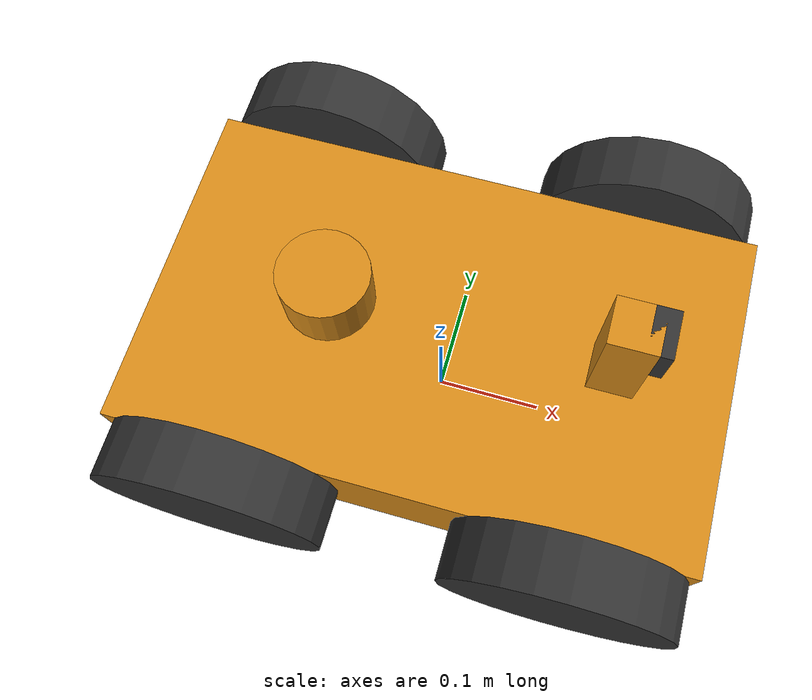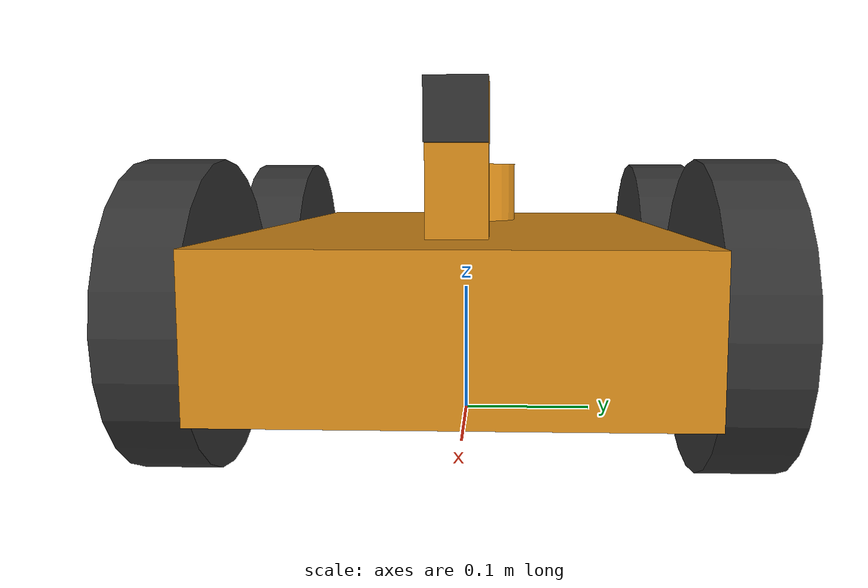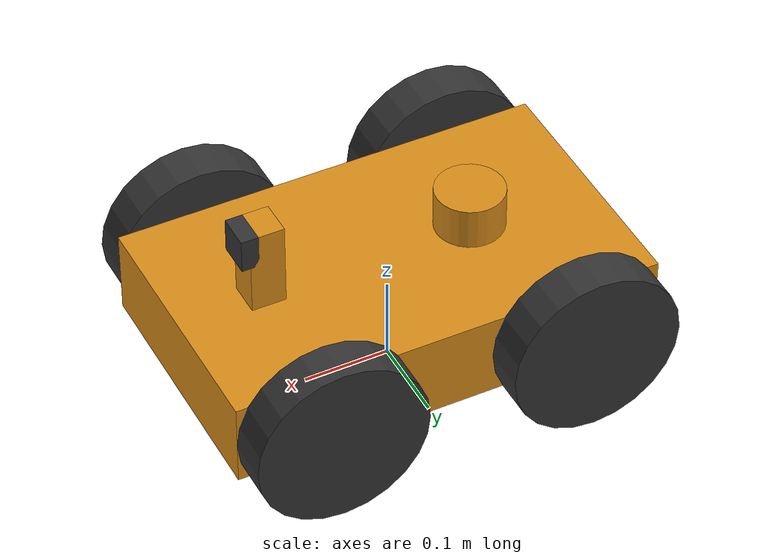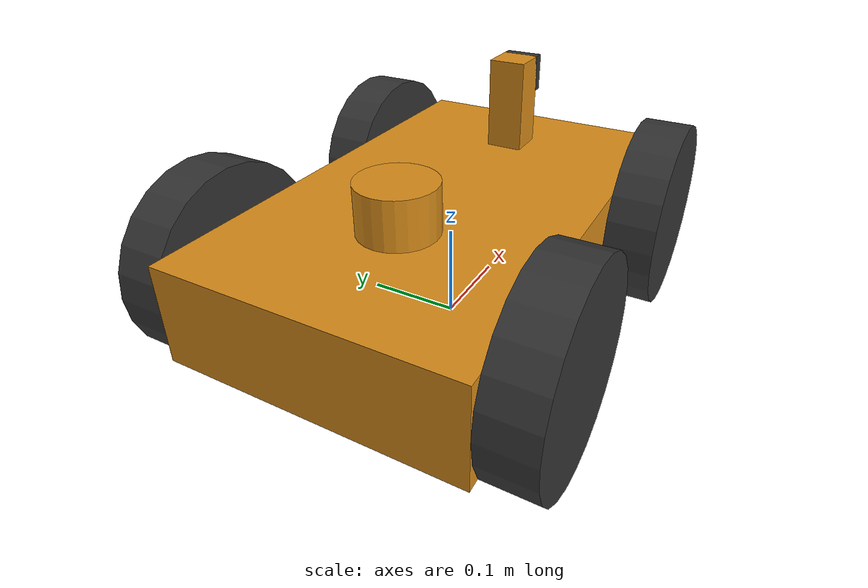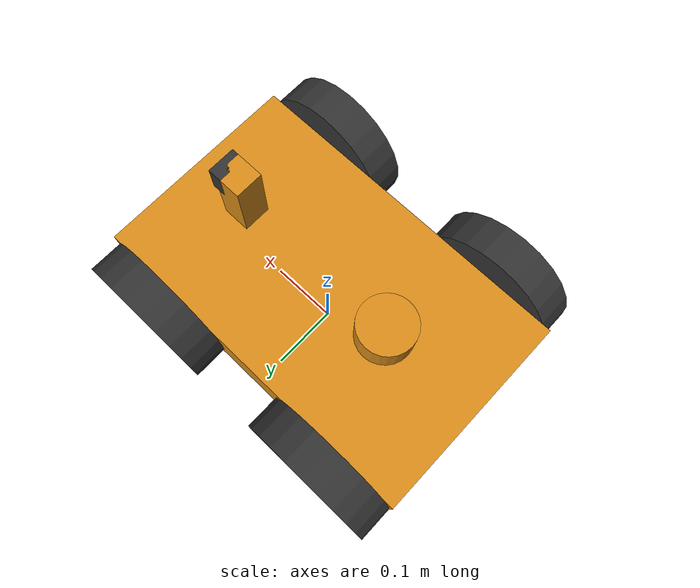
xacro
<?xml version="1.0"?>
<robot xmlns:xacro="http://www.ros.org/wiki/xacro" name="rover_robot">

    <material name="rover_body">
        <color rgba="0.85 0.55 0.1 1"/>
    </material>
    <material name="rover_wheels">
        <color rgba="0.2 0.2 0.2 1"/>
    </material>

    <xacro:property name="wheel_radius" value="0.1"/>
    <xacro:property name="wheel_length" value="0.05"/>
    <xacro:property name="wheel_mass" value="1.0"/>

    <link name="base_link"></link>

    <joint name="chassis_joint" type="fixed">
        <parent link="base_link"/>
        <child link="chassis"/>
        <origin xyz="0 0 0.1"/> </joint>

    <link name="chassis">
        <visual>
            <geometry>
                <box size="0.5 0.3 0.1"/>
            </geometry>
            <material name="rover_body"/>
        </visual>
        <collision>
            <geometry>
                <box size="0.5 0.3 0.1"/>
            </geometry>
        </collision>
        <inertial>
            <mass value="10.0"/>
            <origin xyz="0 0 0"/>
            <inertia ixx="0.083" ixy="0.0" ixz="0.0" iyy="0.216" iyz="0.0" izz="0.283"/>
        </inertial>
    </link>

    <joint name="camera_arm_joint" type="revolute">
        <parent link="chassis"/>
        <child link="camera_arm"/>
        <origin xyz="0.15 0 0.05" rpy="0 0 0"/>
        <axis xyz="0 1 0"/>
        <limit lower="-0.785" upper="0.785" effort="10.0" velocity="1.0"/>
        <dynamics damping="1.0" friction="0.5"/>
    </joint>

    <link name="camera_arm">
        <visual>
            <origin xyz="0 0 0.05" rpy="0 0 0"/>
            <geometry>
                <box size="0.04 0.04 0.1"/>
            </geometry>
            <material name="rover_body"/>
        </visual>
        <collision>
            <origin xyz="0 0 0.05" rpy="0 0 0"/>
            <geometry>
                <box size="0.04 0.04 0.1"/>
            </geometry>
        </collision>
        <inertial>
            <origin xyz="0 0 0.05" rpy="0 0 0"/>
            <mass value="0.1"/>
            <inertia ixx="0.0001" ixy="0.0" ixz="0.0" iyy="0.0001" iyz="0.0" izz="0.0001"/>
        </inertial>
    </link>

    <joint name="camera_joint" type="fixed">
        <parent link="camera_arm"/>
        <child link="camera_link"/>
        <origin xyz="0.02 0 0.08" rpy="0 0 0"/>
    </joint>

    <link name="camera_link">
        <visual>
            <geometry><box size="0.02 0.04 0.04"/></geometry>
            <material name="rover_wheels"/> </visual>
    </link>

    <joint name="camera_optical_joint" type="fixed">
        <parent link="camera_link"/>
        <child link="camera_link_optical"/>
        <origin xyz="0 0 0" rpy="-1.5708 0 -1.5708"/>
    </joint>
    <link name="camera_link_optical"></link>

    <joint name="lidar_joint" type="fixed">
        <parent link="chassis"/>
        <child link="lidar_link"/>
        <origin xyz="-0.1 0 0.075" rpy="0 0 0"/>
    </joint>

    <link name="lidar_link">
        <visual>
            <geometry><cylinder radius="0.04" length="0.05"/></geometry>
            <material name="rover_body"/>
        </visual>
    </link>

    <joint name="imu_joint" type="fixed">
        <parent link="chassis"/>
        <child link="imu_link"/>
        <origin xyz="0 0 0" rpy="0 0 0"/>
    </joint>
    <link name="imu_link"></link>

    <xacro:macro name="rover_wheel" params="prefix x_reflect y_reflect">
        <joint name="${prefix}_wheel_joint" type="continuous">
            <parent link="chassis"/>
            <child link="${prefix}_wheel"/>
            <origin xyz="${x_reflect * 0.15} ${y_reflect * 0.175} 0" rpy="${-1.5708 * y_reflect} 0 0"/>
            <axis xyz="0 0 ${y_reflect}"/>
        </joint>

        <link name="${prefix}_wheel">
            <visual>
                <geometry>
                    <cylinder radius="${wheel_radius}" length="${wheel_length}"/>
                </geometry>
                <material name="rover_wheels"/>
            </visual>
            <collision>
                <geometry>
                    <cylinder radius="${wheel_radius}" length="${wheel_length}"/>
                </geometry>
            </collision>
            <inertial>
                <mass value="${wheel_mass}"/>
                <inertia ixx="0.0027" ixy="0.0" ixz="0.0" iyy="0.0027" iyz="0.0" izz="0.005"/>
            </inertial>
        </link>
    </xacro:macro>

    <xacro:rover_wheel prefix="front_left" x_reflect="1" y_reflect="1"/>
    <xacro:rover_wheel prefix="front_right" x_reflect="1" y_reflect="-1"/>
    <xacro:rover_wheel prefix="rear_left" x_reflect="-1" y_reflect="1"/>
    <xacro:rover_wheel prefix="rear_right" x_reflect="-1" y_reflect="-1"/>

    <ros2_control name="RoverControl" type="system">
        <hardware>
            <plugin>ign_ros2_control/IgnitionSystem</plugin>
        </hardware>
        <joint name="camera_arm_joint">
            <command_interface name="position"/>
            <state_interface name="position"/>
            <state_interface name="velocity"/>
        </joint>
    </ros2_control>

    <gazebo>
    <plugin filename="libignition-gazebo-joint-state-publisher-system.so" name="ignition::gazebo::systems::JointStatePublisher">
        <topic>joint_states</topic>
        <joint_name>front_left_wheel_joint</joint_name>
        <joint_name>front_right_wheel_joint</joint_name>
        <joint_name>rear_left_wheel_joint</joint_name>
        <joint_name>rear_right_wheel_joint</joint_name>
    </plugin>
    </gazebo>

    <gazebo>
        <plugin filename="ignition-gazebo-diff-drive-system" name="ignition::gazebo::systems::DiffDrive">
            <left_joint>front_left_wheel_joint</left_joint>
            <left_joint>rear_left_wheel_joint</left_joint>
            <right_joint>front_right_wheel_joint</right_joint>
            <right_joint>rear_right_wheel_joint</right_joint>
            <wheel_separation>0.35</wheel_separation>
            <wheel_radius>0.1</wheel_radius>
            <odom_publish_frequency>50</odom_publish_frequency>
            <topic>/cmd_vel</topic>

            <publish_odom>true</publish_odom>
            <publish_odom_tf>true</publish_odom_tf>
            <frame_id>odom</frame_id>
            <child_frame_id>base_link</child_frame_id>
        </plugin>
    </gazebo>

    <gazebo reference="camera_link">
        <sensor name="camera" type="camera">
            <ignition_frame_id>camera_link_optical</ignition_frame_id>
            <always_on>true</always_on>
            <update_rate>30</update_rate>
            <visualize>true</visualize>
            <topic>camera/image_raw</topic>
            <camera>
                <horizontal_fov>1.089</horizontal_fov>
                <image>
                    <width>640</width>
                    <height>480</height>
                    <format>R8G8B8</format>
                </image>
                <clip><near>0.05</near><far>8.0</far></clip>
            </camera>
        </sensor>
    </gazebo>

    <gazebo reference="lidar_link">
        <sensor name="lidar" type="gpu_lidar">
            <ignition_frame_id>lidar_link</ignition_frame_id>
            <always_on>true</always_on>
            <update_rate>10</update_rate>
            <visualize>true</visualize>
            <topic>scan</topic>
            <ray>
                <scan>
                    <horizontal>
                        <samples>360</samples>
                        <resolution>1.0</resolution>
                        <min_angle>-3.14159</min_angle>
                        <max_angle>3.14159</max_angle>
                    </horizontal>
                </scan>
                <range>
                    <min>0.12</min><max>3.5</max><resolution>0.015</resolution>
                </range>
            </ray>
        </sensor>
    </gazebo>

    <gazebo reference="imu_link">
        <sensor name="imu_sensor" type="imu">
            <ignition_frame_id>imu_link</ignition_frame_id>
            <always_on>true</always_on>
            <update_rate>100</update_rate>
            <visualize>true</visualize>
            <topic>imu</topic>
        </sensor>
    </gazebo>

    <gazebo>
        <plugin filename="ign_ros2_control-system" name="ign_ros2_control::IgnitionROS2ControlPlugin">
            <parameters>$(find rover_robot)/config/controllers.yaml</parameters>
        </plugin>
    </gazebo>

</robot>
